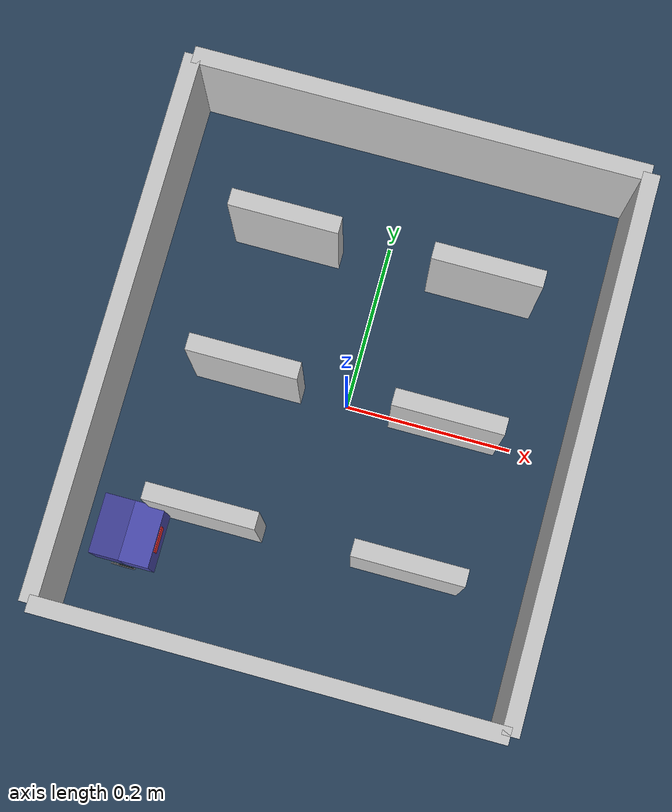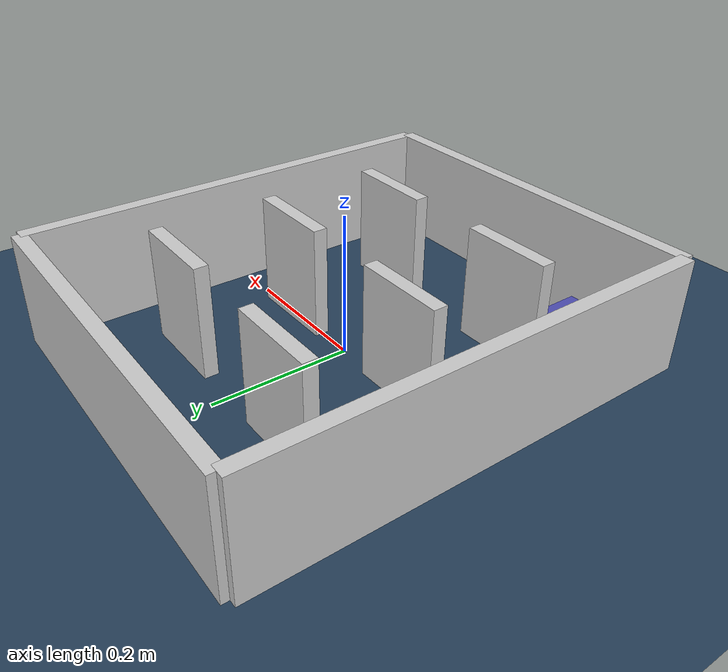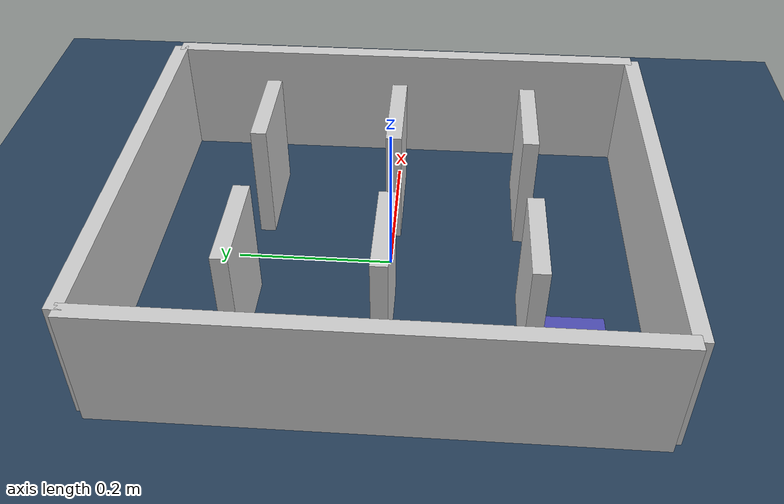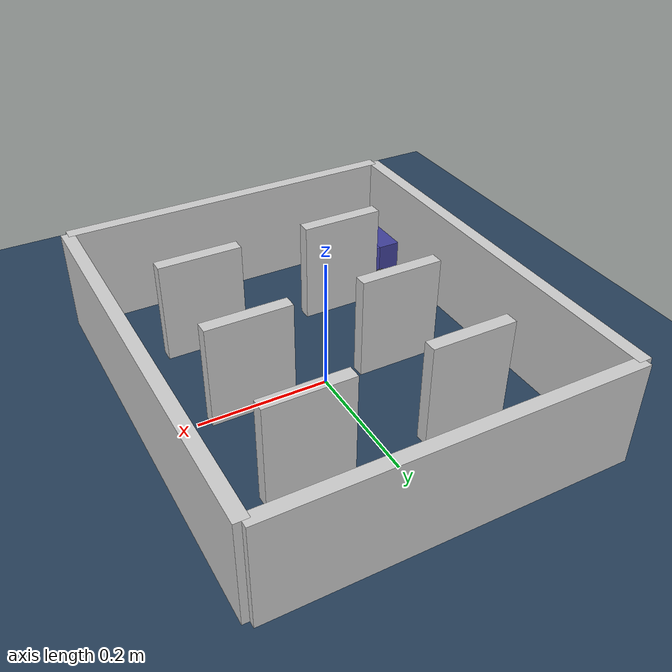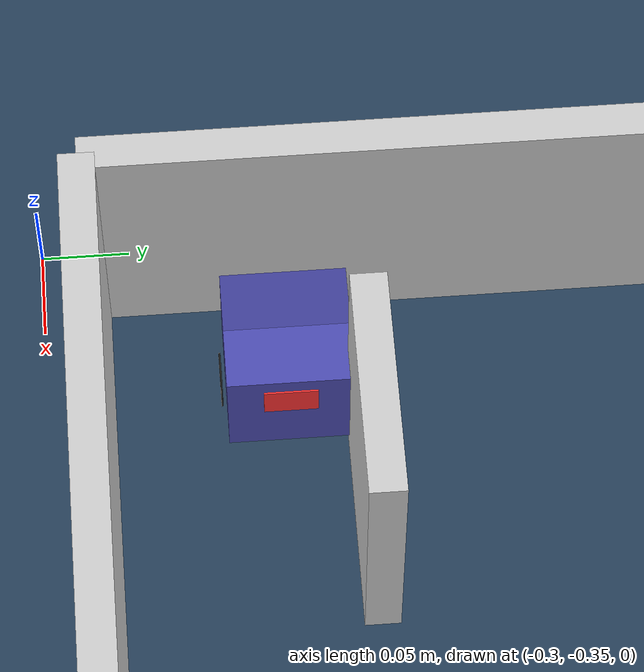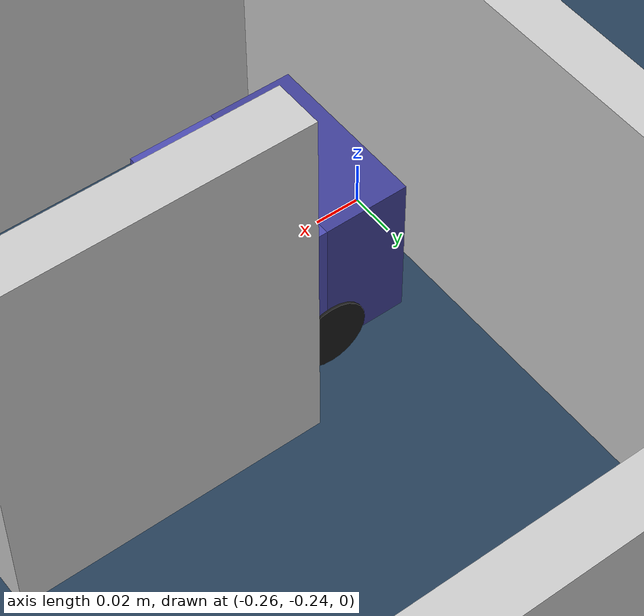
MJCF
<?xml version="1.0" encoding="utf-8"?>
<mujoco model="generated_environment">
  <option timestep="0.002" integrator="implicitfast" cone="elliptic" iterations="100" gravity="0 0 -9.81" />
  <default>
    <geom density="1" />
  </default>
  <asset>
    <texture builtin="gradient" height="3072" rgb1="0.3 0.5 0.7" rgb2="0 0 0" type="skybox" width="512" />
    <texture builtin="checker" height="300" mark="edge" markrgb="0.8 0.8 0.8" name="groundplane" rgb1="0.2 0.3 0.4" rgb2="0.1 0.2 0.3" type="2d" width="300" />
    <material name="groundplane" reflectance="0.2" texrepeat="5 5" texture="groundplane" texuniform="true" />
    <material name="robot" rgba="1.0 1.0 0.0 1.0" />
  </asset>
  <worldbody>
    <light dir="0 0 -1" directional="true" pos="0 0 1.5" />
    <geom condim="4" friction="0.5 0.005 0.001" material="groundplane" name="floor" size="0 0 0.05" type="plane" />
    <body name="walls">
      <geom name="wall_1" condim="4" pos="-0.267950 0.000000 0.080000" rgba="0.800000011920929 0.800000011920929 0.800000011920929 1.0" size="0.010000 0.321540 0.080000" type="box" />
      <geom name="wall_2" condim="4" pos="0.267950 0.000000 0.080000" rgba="0.800000011920929 0.800000011920929 0.800000011920929 1.0" size="0.010000 0.321540 0.080000" type="box" />
      <geom name="wall_3" condim="4" pos="0.000000 -0.321540 0.080000" rgba="0.800000011920929 0.800000011920929 0.800000011920929 1.0" size="0.267950 0.010000 0.080000" type="box" />
      <geom name="wall_4" condim="4" pos="0.000000 0.321540 0.080000" rgba="0.800000011920929 0.800000011920929 0.800000011920929 1.0" size="0.267950 0.010000 0.080000" type="box" />
      <geom name="wall_5" condim="4" pos="-0.117898 0.171488 0.080000" rgba="0.800000011920929 0.800000011920929 0.800000011920929 1.0" size="0.064308 0.010000 0.080000" type="box" />
      <geom name="wall_6" condim="4" pos="0.117898 0.171488 0.080000" rgba="0.800000011920929 0.800000011920929 0.800000011920929 1.0" size="0.064308 0.010000 0.080000" type="box" />
      <geom name="wall_7" condim="4" pos="-0.117898 0.000000 0.080000" rgba="0.800000011920929 0.800000011920929 0.800000011920929 1.0" size="0.064308 0.010000 0.080000" type="box" />
      <geom name="wall_8" condim="4" pos="0.117898 0.000000 0.080000" rgba="0.800000011920929 0.800000011920929 0.800000011920929 1.0" size="0.064308 0.010000 0.080000" type="box" />
      <geom name="wall_9" condim="4" pos="-0.117898 -0.171488 0.080000" rgba="0.800000011920929 0.800000011920929 0.800000011920929 1.0" size="0.064308 0.010000 0.080000" type="box" />
      <geom name="wall_10" condim="4" pos="0.117898 -0.171488 0.080000" rgba="0.800000011920929 0.800000011920929 0.800000011920929 1.0" size="0.064308 0.010000 0.080000" type="box" />
    </body>
        <body name="car" pos="-0.198708 -0.213742 0.010000">
      <freejoint name="car_freejoint"/>
      <inertial pos="0.000000 0 0.037500" mass="0.350000"
                diaginertia="0.000266 0.000266 0.000286"/>
      <geom name="front_chassis_collision" type="box"
            pos="0.017500 0 0.037500" size="0.017500 0.035000 0.032500"
            rgba="0.3 0.3 0.7 1"/>
      <geom name="rear_chassis_collision" type="box"
            pos="-0.017500 0 0.037500" size="0.017500 0.035000 0.032500"
            rgba="0.25 0.25 0.6 1"/>
      <geom name="front_marker" type="box"
            pos="0.034000 0 0.050500" size="0.002000 0.015000 0.010000"
            rgba="1.0 0.2 0.2 1" contype="0" conaffinity="0"/>
      <body name="rear_support_body" pos="-0.030000 0.000000 0.002500">
        <joint name="rear_caster_joint" type="ball" damping="0.0001"/>
        <inertial pos="0 0 0" mass="0.025000"
                  diaginertia="0.000001 0.000001 0.000001"/>
        <geom name="rear_support" type="sphere" pos="0 0 0" size="0.002500"
              friction="0.000000 0.000000 0.000000" rgba="0.7 0.1 0.1 1"/>
      </body>
      <body name="front_support_body" pos="0.030000 0.000000 0.002500">
        <joint name="front_caster_joint" type="ball" damping="0.0001"/>
        <inertial pos="0 0 0" mass="0.025000"
                  diaginertia="0.000001 0.000001 0.000001"/>
        <geom name="front_support" type="sphere" pos="0 0 0" size="0.002500"
              friction="0.000000 0.000000 0.000000" rgba="0.1 0.7 0.1 1"/>
      </body>
      <body name="left_wheel" pos="0.000000 0.037500 0.015000">
        <inertial pos="0 0 0" mass="0.050000"
                  diaginertia="0.000003 0.000006 0.000003"/>
        <joint name="left_wheel_joint" type="hinge" axis="0 1 0" damping="0.01" armature="0.0001"/>
        <geom name="left_wheel_collision" type="cylinder"
              size="0.015000 0.000500" euler="90 0 0" rgba="0.1 0.1 0.1 1"/>
      </body>
      <body name="right_wheel" pos="0.000000 -0.037500 0.015000">
        <inertial pos="0 0 0" mass="0.050000"
                  diaginertia="0.000003 0.000006 0.000003"/>
        <joint name="right_wheel_joint" type="hinge" axis="0 1 0" damping="0.01" armature="0.0001"/>
        <geom name="right_wheel_collision" type="cylinder"
              size="0.015000 0.000500" euler="90 0 0" rgba="0.1 0.1 0.1 1"/>
      </body>
    </body>
  </worldbody>
    <actuator>
    <velocity name="left_wheel_drive" joint="left_wheel_joint"
              ctrlrange="-25.000000 25.000000"
              kv="0.750000" forcerange="-0.500000 0.500000"/>
    <velocity name="right_wheel_drive" joint="right_wheel_joint"
              ctrlrange="-25.000000 25.000000"
              kv="0.750000" forcerange="-0.500000 0.500000"/>
  </actuator>
</mujoco>
